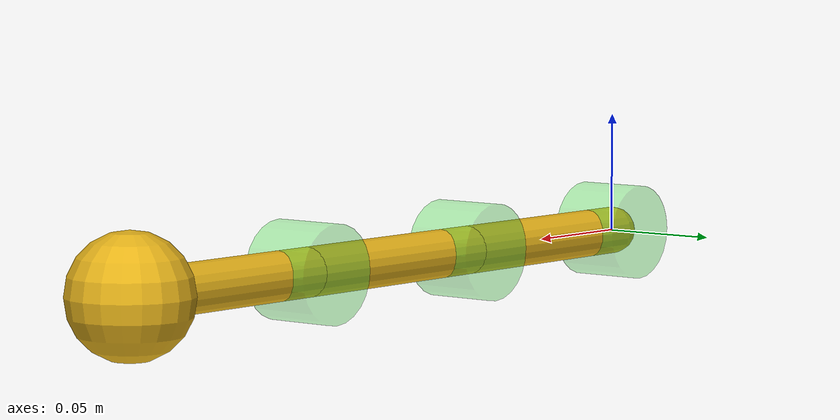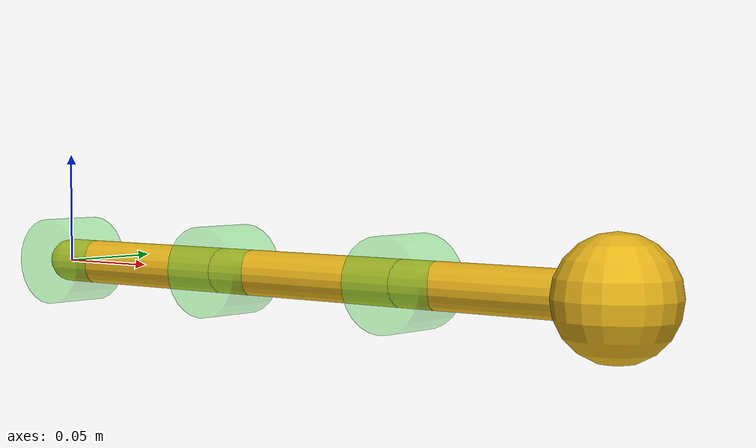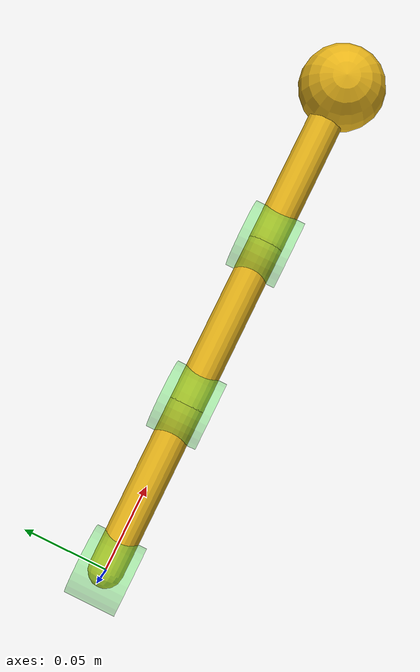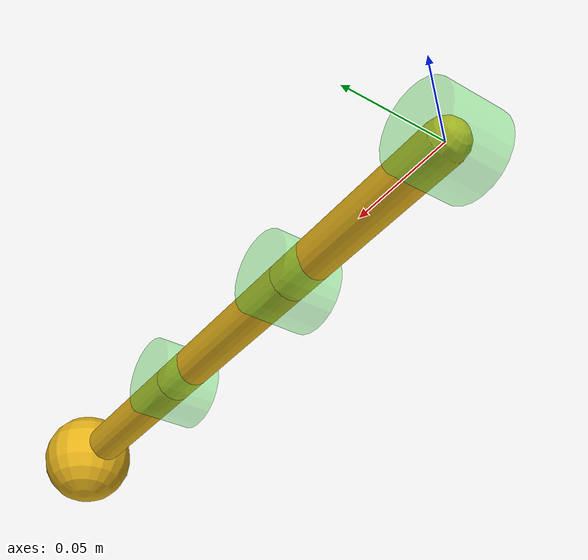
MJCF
<mujoco model="3-joint-planar-manipulator">

    <default>
        <joint axis="0 1 0"/>
        <geom type="capsule" size=".01" rgba=".9 .7 .1 1"/>
        <default class="visual_cylinder">
            <geom type="cylinder" fromto="0 .015 0 0 -.015 0" size=".02" rgba=".3 .9 .3 .4"/>
        </default>
    </default>

    <worldbody>
        <light pos="0 0 1"/>
        <body name="link_1" pos="0 0 0">
            <joint/>
            <geom name="g1" class="visual_cylinder"/>
            <geom fromto="0 0 0 .1 0 0"/>
            <body name="link_2" pos=".1 0 0">
                <joint/>
                <geom name="g2" class="visual_cylinder"/>
                <geom fromto="0 0 0 .1 0 0"/>
                <body name="link_3" pos=".1 0 0">
                    <joint/>
                    <geom name="g3" class="visual_cylinder"/>
                    <geom fromto="0 0 0 .1 0 0"/>

                    <body name="end_effector" pos=".1 0 0">
                        <geom type="sphere" size=".025" mass="0.05"/>
                    </body>
                </body>
            </body>
        </body>
    </worldbody>

    <contact>
        <exclude body1="link_1" body2="link_2"/>
        <exclude body1="link_1" body2="link_3"/>
        <exclude body1="link_1" body2="end_effector"/>
        <exclude body1="link_2" body2="link_3"/>
        <exclude body1="link_2" body2="end_effector"/>
        <exclude body1="link_3" body2="end_effector"/>
    </contact>

</mujoco>
